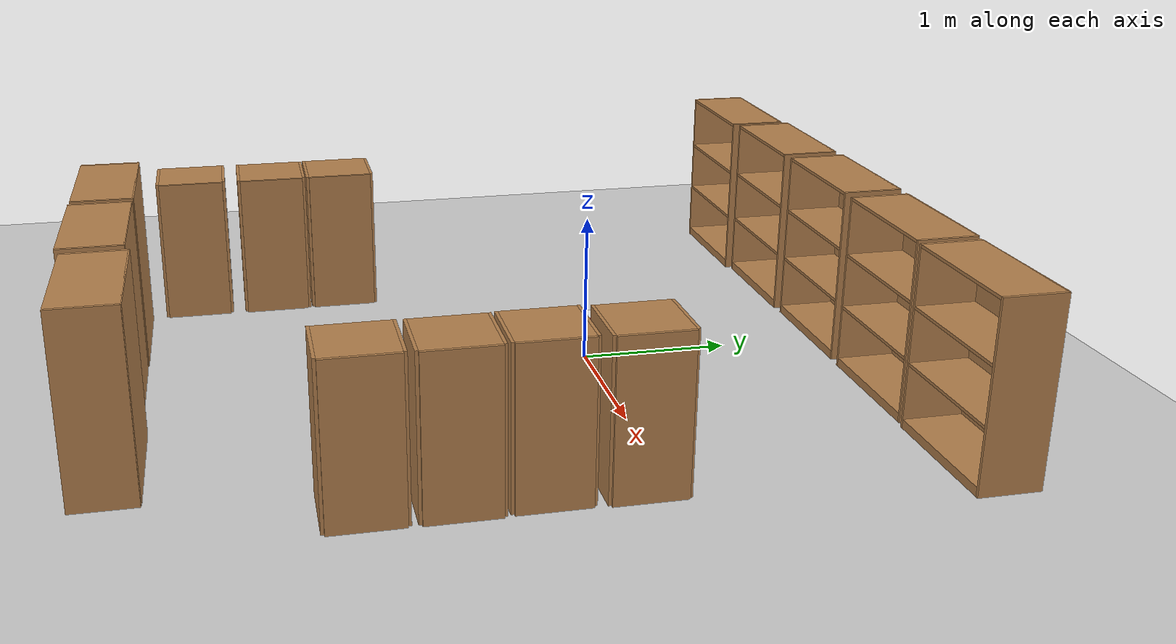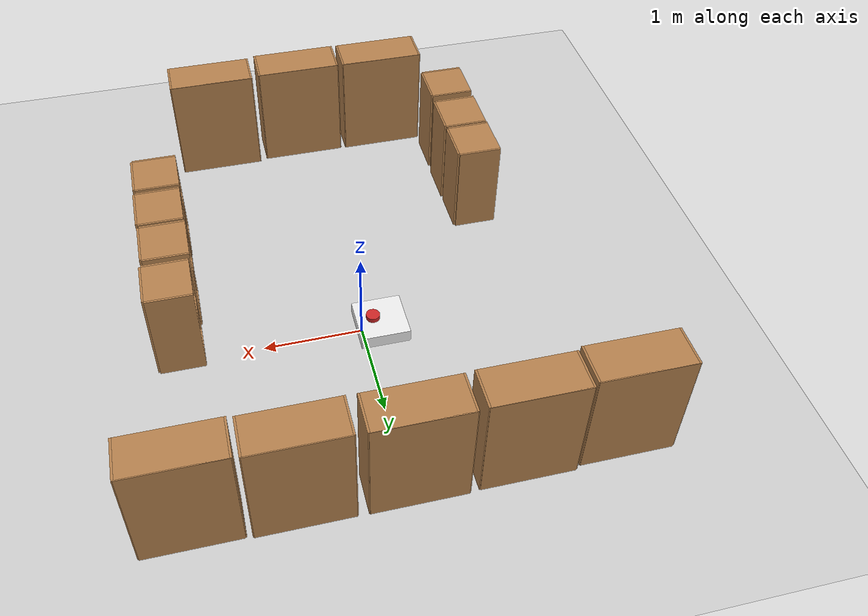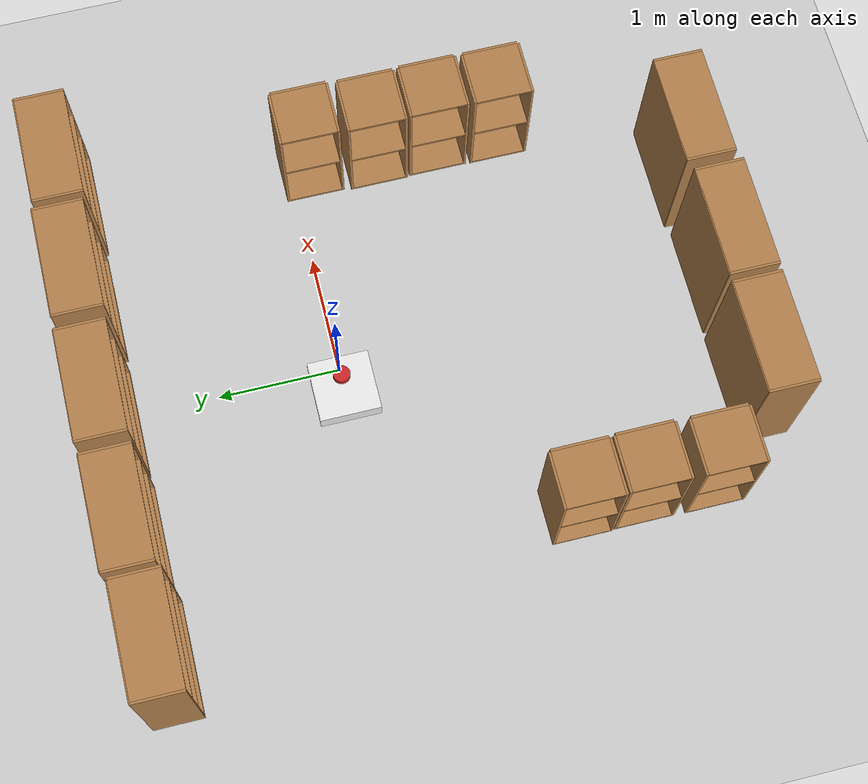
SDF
<sdf version="1.7">
 <world name="default">
  <light name="sun" type="directional">
   <pose>0 0 10 0 -0 0</pose>
   <diffuse>0.8 0.8 0.8 1</diffuse>
   <specular>0.2 0.2 0.2 1</specular>
   <attenuation>
    <range>1000</range>
    <constant>0.9</constant>
    <linear>0.01</linear>
    <quadratic>0.001</quadratic>
   </attenuation>
   <direction>-0.5 0.1 -0.9</direction>
   <spot><inner_angle>0</inner_angle><outer_angle>0</outer_angle><falloff>0</falloff></spot>
  </light>
  <model name="ground_plane">
   <static>1</static>
   <link name="link">
    <collision name="collision">
     <geometry><plane><normal>0 0 1</normal><size>100 100</size></plane></geometry>
     <surface>
      <contact><collide_bitmask>65535</collide_bitmask></contact>
      <friction><ode><mu>100</mu><mu2>50</mu2></ode></friction>
     </surface>
    </collision>
    <visual name="visual">
     <cast_shadows>0</cast_shadows>
     <geometry><plane><normal>0 0 1</normal><size>100 100</size></plane></geometry>
     <material>
      <script><uri>file://media/materials/scripts/gazebo.material</uri><name>Gazebo/Grey</name></script>
     </material>
    </visual>
   </link>
  </model>
  <gravity>0 0 -9.8</gravity>
  <magnetic_field>6e-06 2.3e-05 -4.2e-05</magnetic_field>
  <atmosphere type="adiabatic"/>
  <physics type="ode">
   <max_step_size>0.001</max_step_size>
   <real_time_factor>1</real_time_factor>
   <real_time_update_rate>1000</real_time_update_rate>
  </physics>
  <scene><ambient>0.4 0.4 0.4 1</ambient><background>0.7 0.7 0.7 1</background><shadows>1</shadows></scene>
  <audio><device>default</device></audio>
  <spherical_coordinates>
   <surface_model>EARTH_WGS84</surface_model>
   <latitude_deg>0</latitude_deg>
   <longitude_deg>0</longitude_deg>
   <elevation>0</elevation>
   <heading_deg>0</heading_deg>
  </spherical_coordinates>
  <model name="cabinet">
   <static>1</static>
   <link name="cabinet_bottom_plate">
    <inertial>
     <pose>0 0 -1 0 -0 0</pose>
     <inertia><ixx>2.05</ixx><ixy>0</ixy><ixz>0</ixz><iyy>2.05</iyy><iyz>0</iyz><izz>2.05</izz></inertia>
     <mass>25</mass>
    </inertial>
    <collision name="cabinet_bottom_plate_geom">
     <pose>0 0 0.01 0 -0 0</pose>
     <geometry><box><size>0.45 0.45 0.02</size></box></geometry>
    </collision>
    <visual name="cabinet_bottom_plate_geom_visual">
     <pose>0 0 0.01 0 -0 0</pose>
     <geometry><box><size>0.45 0.45 0.02</size></box></geometry>
     <material>
      <script><uri>file://media/materials/scripts/gazebo.material</uri><name>Gazebo/Wood</name></script>
     </material>
    </visual>
    <collision name="cabinet_bottom_plate_geom_cabinet_back_plate">
     <pose>0.235 0 0.51 0 -0 0</pose>
     <geometry><box><size>0.02 0.45 1.02</size></box></geometry>
    </collision>
    <visual name="cabinet_bottom_plate_geom_cabinet_back_plate_visual">
     <pose>0.235 0 0.51 0 -0 0</pose>
     <geometry><box><size>0.02 0.45 1.02</size></box></geometry>
     <material>
      <script><uri>file://media/materials/scripts/gazebo.material</uri><name>Gazebo/Wood</name></script>
     </material>
    </visual>
    <collision name="cabinet_bottom_plate_geom_cabinet_left_plate">
     <pose>0 0.235 0.51 0 -0 0</pose>
     <geometry><box><size>0.45 0.02 1.02</size></box></geometry>
    </collision>
    <visual name="cabinet_bottom_plate_geom_cabinet_left_plate_visual">
     <pose>0 0.235 0.51 0 -0 0</pose>
     <geometry><box><size>0.45 0.02 1.02</size></box></geometry>
     <material>
      <script><uri>file://media/materials/scripts/gazebo.material</uri><name>Gazebo/Wood</name></script>
     </material>
    </visual>
    <collision name="cabinet_bottom_plate_geom_cabinet_middle_plate">
     <pose>0 0 0.51 0 -0 0</pose>
     <geometry><box><size>0.45 0.45 0.02</size></box></geometry>
    </collision>
    <visual name="cabinet_bottom_plate_geom_cabinet_middle_plate_visual">
     <pose>0 0 0.51 0 -0 0</pose>
     <geometry><box><size>0.45 0.45 0.02</size></box></geometry>
     <material>
      <script><uri>file://media/materials/scripts/gazebo.material</uri><name>Gazebo/Wood</name></script>
     </material>
    </visual>
    <collision name="cabinet_bottom_plate_geom_cabinet_right_plate">
     <pose>0 -0.235 0.51 0 -0 0</pose>
     <geometry><box><size>0.45 0.02 1.02</size></box></geometry>
    </collision>
    <visual name="cabinet_bottom_plate_geom_cabinet_right_plate_visual">
     <pose>0 -0.235 0.51 0 -0 0</pose>
     <geometry><box><size>0.45 0.02 1.02</size></box></geometry>
     <material>
      <script><uri>file://media/materials/scripts/gazebo.material</uri><name>Gazebo/Wood</name></script>
     </material>
    </visual>
    <collision name="cabinet_bottom_plate_geom_cabinet_top_plate">
     <pose>0 0 1.01 0 -0 0</pose>
     <geometry><box><size>0.45 0.45 0.02</size></box></geometry>
    </collision>
    <visual name="cabinet_bottom_plate_geom_cabinet_top_plate_visual">
     <pose>0 0 1.01 0 -0 0</pose>
     <geometry><box><size>0.45 0.45 0.02</size></box></geometry>
     <material>
      <script><uri>file://media/materials/scripts/gazebo.material</uri><name>Gazebo/Wood</name></script>
     </material>
    </visual>
   </link>
   <pose>1.79653 -1.74057 0 0 -0 0</pose>
  </model>
  <model name="cabinet_0">
   <static>1</static>
   <link name="cabinet_bottom_plate">
    <inertial>
     <pose>0 0 -1 0 -0 0</pose>
     <inertia><ixx>2.05</ixx><ixy>0</ixy><ixz>0</ixz><iyy>2.05</iyy><iyz>0</iyz><izz>2.05</izz></inertia>
     <mass>25</mass>
    </inertial>
    <collision name="cabinet_bottom_plate_geom">
     <pose>0 0 0.01 0 -0 0</pose>
     <geometry><box><size>0.45 0.45 0.02</size></box></geometry>
    </collision>
    <visual name="cabinet_bottom_plate_geom_visual">
     <pose>0 0 0.01 0 -0 0</pose>
     <geometry><box><size>0.45 0.45 0.02</size></box></geometry>
     <material>
      <script><uri>file://media/materials/scripts/gazebo.material</uri><name>Gazebo/Wood</name></script>
     </material>
    </visual>
    <collision name="cabinet_bottom_plate_geom_cabinet_back_plate">
     <pose>0.235 0 0.51 0 -0 0</pose>
     <geometry><box><size>0.02 0.45 1.02</size></box></geometry>
    </collision>
    <visual name="cabinet_bottom_plate_geom_cabinet_back_plate_visual">
     <pose>0.235 0 0.51 0 -0 0</pose>
     <geometry><box><size>0.02 0.45 1.02</size></box></geometry>
     <material>
      <script><uri>file://media/materials/scripts/gazebo.material</uri><name>Gazebo/Wood</name></script>
     </material>
    </visual>
    <collision name="cabinet_bottom_plate_geom_cabinet_left_plate">
     <pose>0 0.235 0.51 0 -0 0</pose>
     <geometry><box><size>0.45 0.02 1.02</size></box></geometry>
    </collision>
    <visual name="cabinet_bottom_plate_geom_cabinet_left_plate_visual">
     <pose>0 0.235 0.51 0 -0 0</pose>
     <geometry><box><size>0.45 0.02 1.02</size></box></geometry>
     <material>
      <script><uri>file://media/materials/scripts/gazebo.material</uri><name>Gazebo/Wood</name></script>
     </material>
    </visual>
    <collision name="cabinet_bottom_plate_geom_cabinet_middle_plate">
     <pose>0 0 0.51 0 -0 0</pose>
     <geometry><box><size>0.45 0.45 0.02</size></box></geometry>
    </collision>
    <visual name="cabinet_bottom_plate_geom_cabinet_middle_plate_visual">
     <pose>0 0 0.51 0 -0 0</pose>
     <geometry><box><size>0.45 0.45 0.02</size></box></geometry>
     <material>
      <script><uri>file://media/materials/scripts/gazebo.material</uri><name>Gazebo/Wood</name></script>
     </material>
    </visual>
    <collision name="cabinet_bottom_plate_geom_cabinet_right_plate">
     <pose>0 -0.235 0.51 0 -0 0</pose>
     <geometry><box><size>0.45 0.02 1.02</size></box></geometry>
    </collision>
    <visual name="cabinet_bottom_plate_geom_cabinet_right_plate_visual">
     <pose>0 -0.235 0.51 0 -0 0</pose>
     <geometry><box><size>0.45 0.02 1.02</size></box></geometry>
     <material>
      <script><uri>file://media/materials/scripts/gazebo.material</uri><name>Gazebo/Wood</name></script>
     </material>
    </visual>
    <collision name="cabinet_bottom_plate_geom_cabinet_top_plate">
     <pose>0 0 1.01 0 -0 0</pose>
     <geometry><box><size>0.45 0.45 0.02</size></box></geometry>
    </collision>
    <visual name="cabinet_bottom_plate_geom_cabinet_top_plate_visual">
     <pose>0 0 1.01 0 -0 0</pose>
     <geometry><box><size>0.45 0.45 0.02</size></box></geometry>
     <material>
      <script><uri>file://media/materials/scripts/gazebo.material</uri><name>Gazebo/Wood</name></script>
     </material>
    </visual>
   </link>
   <pose>-1.58608 -1.53469 0 0 -0 0</pose>
  </model>
  <model name="bookshelf">
   <static>1</static>
   <link name="link">
    <inertial><mass>1</mass></inertial>
    <collision name="back">
     <pose>0 0.005 0.6 0 -0 0</pose>
     <geometry><box><size>0.9 0.01 1.2</size></box></geometry>
    </collision>
    <visual name="visual1">
     <pose>0 0.005 0.6 0 -0 0</pose>
     <geometry><box><size>0.9 0.01 1.2</size></box></geometry>
     <material>
      <script><uri>file://media/materials/scripts/gazebo.material</uri><name>Gazebo/Wood</name></script>
     </material>
    </visual>
    <collision name="left_side">
     <pose>0.45 -0.195 0.6 0 -0 0</pose>
     <geometry><box><size>0.02 0.4 1.2</size></box></geometry>
    </collision>
    <visual name="visual2">
     <pose>0.45 -0.195 0.6 0 -0 0</pose>
     <geometry><box><size>0.02 0.4 1.2</size></box></geometry>
     <material>
      <script><uri>file://media/materials/scripts/gazebo.material</uri><name>Gazebo/Wood</name></script>
     </material>
    </visual>
    <collision name="right_side">
     <pose>-0.45 -0.195 0.6 0 -0 0</pose>
     <geometry><box><size>0.02 0.4 1.2</size></box></geometry>
    </collision>
    <visual name="visual3">
     <pose>-0.45 -0.195 0.6 0 -0 0</pose>
     <geometry><box><size>0.02 0.4 1.2</size></box></geometry>
     <material>
      <script><uri>file://media/materials/scripts/gazebo.material</uri><name>Gazebo/Wood</name></script>
     </material>
    </visual>
    <collision name="bottom">
     <pose>0 -0.195 0.03 0 -0 0</pose>
     <geometry><box><size>0.88 0.4 0.06</size></box></geometry>
    </collision>
    <visual name="visual4">
     <pose>0 -0.195 0.03 0 -0 0</pose>
     <geometry><box><size>0.88 0.4 0.06</size></box></geometry>
     <material>
      <script><uri>file://media/materials/scripts/gazebo.material</uri><name>Gazebo/Wood</name></script>
     </material>
    </visual>
    <collision name="top">
     <pose>0 -0.195 1.19 0 -0 0</pose>
     <geometry><box><size>0.88 0.4 0.02</size></box></geometry>
    </collision>
    <visual name="visual5">
     <pose>0 -0.195 1.19 0 -0 0</pose>
     <geometry><box><size>0.88 0.4 0.02</size></box></geometry>
     <material>
      <script><uri>file://media/materials/scripts/gazebo.material</uri><name>Gazebo/Wood</name></script>
     </material>
    </visual>
    <collision name="low_shelf">
     <pose>0 -0.195 0.43 0 -0 0</pose>
     <geometry><box><size>0.88 0.4 0.02</size></box></geometry>
    </collision>
    <visual name="visual6">
     <pose>0 -0.195 0.43 0 -0 0</pose>
     <geometry><box><size>0.88 0.4 0.02</size></box></geometry>
     <material>
      <script><uri>file://media/materials/scripts/gazebo.material</uri><name>Gazebo/Wood</name></script>
     </material>
    </visual>
    <collision name="high_shelf">
     <pose>0 -0.195 0.8 0 -0 0</pose>
     <geometry><box><size>0.88 0.4 0.02</size></box></geometry>
    </collision>
    <visual name="visual7">
     <pose>0 -0.195 0.8 0 -0 0</pose>
     <geometry><box><size>0.88 0.4 0.02</size></box></geometry>
     <material>
      <script><uri>file://media/materials/scripts/gazebo.material</uri><name>Gazebo/Wood</name></script>
     </material>
    </visual>
   </link>
   <pose>-0.070143 2.05105 0 0 -0 0</pose>
  </model>
  <model name="bookshelf_0">
   <static>1</static>
   <link name="link">
    <inertial><mass>1</mass></inertial>
    <collision name="back">
     <pose>0 0.005 0.6 0 -0 0</pose>
     <geometry><box><size>0.9 0.01 1.2</size></box></geometry>
    </collision>
    <visual name="visual1">
     <pose>0 0.005 0.6 0 -0 0</pose>
     <geometry><box><size>0.9 0.01 1.2</size></box></geometry>
     <material>
      <script><uri>file://media/materials/scripts/gazebo.material</uri><name>Gazebo/Wood</name></script>
     </material>
    </visual>
    <collision name="left_side">
     <pose>0.45 -0.195 0.6 0 -0 0</pose>
     <geometry><box><size>0.02 0.4 1.2</size></box></geometry>
    </collision>
    <visual name="visual2">
     <pose>0.45 -0.195 0.6 0 -0 0</pose>
     <geometry><box><size>0.02 0.4 1.2</size></box></geometry>
     <material>
      <script><uri>file://media/materials/scripts/gazebo.material</uri><name>Gazebo/Wood</name></script>
     </material>
    </visual>
    <collision name="right_side">
     <pose>-0.45 -0.195 0.6 0 -0 0</pose>
     <geometry><box><size>0.02 0.4 1.2</size></box></geometry>
    </collision>
    <visual name="visual3">
     <pose>-0.45 -0.195 0.6 0 -0 0</pose>
     <geometry><box><size>0.02 0.4 1.2</size></box></geometry>
     <material>
      <script><uri>file://media/materials/scripts/gazebo.material</uri><name>Gazebo/Wood</name></script>
     </material>
    </visual>
    <collision name="bottom">
     <pose>0 -0.195 0.03 0 -0 0</pose>
     <geometry><box><size>0.88 0.4 0.06</size></box></geometry>
    </collision>
    <visual name="visual4">
     <pose>0 -0.195 0.03 0 -0 0</pose>
     <geometry><box><size>0.88 0.4 0.06</size></box></geometry>
     <material>
      <script><uri>file://media/materials/scripts/gazebo.material</uri><name>Gazebo/Wood</name></script>
     </material>
    </visual>
    <collision name="top">
     <pose>0 -0.195 1.19 0 -0 0</pose>
     <geometry><box><size>0.88 0.4 0.02</size></box></geometry>
    </collision>
    <visual name="visual5">
     <pose>0 -0.195 1.19 0 -0 0</pose>
     <geometry><box><size>0.88 0.4 0.02</size></box></geometry>
     <material>
      <script><uri>file://media/materials/scripts/gazebo.material</uri><name>Gazebo/Wood</name></script>
     </material>
    </visual>
    <collision name="low_shelf">
     <pose>0 -0.195 0.43 0 -0 0</pose>
     <geometry><box><size>0.88 0.4 0.02</size></box></geometry>
    </collision>
    <visual name="visual6">
     <pose>0 -0.195 0.43 0 -0 0</pose>
     <geometry><box><size>0.88 0.4 0.02</size></box></geometry>
     <material>
      <script><uri>file://media/materials/scripts/gazebo.material</uri><name>Gazebo/Wood</name></script>
     </material>
    </visual>
    <collision name="high_shelf">
     <pose>0 -0.195 0.8 0 -0 0</pose>
     <geometry><box><size>0.88 0.4 0.02</size></box></geometry>
    </collision>
    <visual name="visual7">
     <pose>0 -0.195 0.8 0 -0 0</pose>
     <geometry><box><size>0.88 0.4 0.02</size></box></geometry>
     <material>
      <script><uri>file://media/materials/scripts/gazebo.material</uri><name>Gazebo/Wood</name></script>
     </material>
    </visual>
   </link>
   <pose>0.942437 2.04598 0 0 -0 0</pose>
  </model>
  <model name="bookshelf_1">
   <static>1</static>
   <link name="link">
    <inertial><mass>1</mass></inertial>
    <collision name="back">
     <pose>0 0.005 0.6 0 -0 0</pose>
     <geometry><box><size>0.9 0.01 1.2</size></box></geometry>
    </collision>
    <visual name="visual1">
     <pose>0 0.005 0.6 0 -0 0</pose>
     <geometry><box><size>0.9 0.01 1.2</size></box></geometry>
     <material>
      <script><uri>file://media/materials/scripts/gazebo.material</uri><name>Gazebo/Wood</name></script>
     </material>
    </visual>
    <collision name="left_side">
     <pose>0.45 -0.195 0.6 0 -0 0</pose>
     <geometry><box><size>0.02 0.4 1.2</size></box></geometry>
    </collision>
    <visual name="visual2">
     <pose>0.45 -0.195 0.6 0 -0 0</pose>
     <geometry><box><size>0.02 0.4 1.2</size></box></geometry>
     <material>
      <script><uri>file://media/materials/scripts/gazebo.material</uri><name>Gazebo/Wood</name></script>
     </material>
    </visual>
    <collision name="right_side">
     <pose>-0.45 -0.195 0.6 0 -0 0</pose>
     <geometry><box><size>0.02 0.4 1.2</size></box></geometry>
    </collision>
    <visual name="visual3">
     <pose>-0.45 -0.195 0.6 0 -0 0</pose>
     <geometry><box><size>0.02 0.4 1.2</size></box></geometry>
     <material>
      <script><uri>file://media/materials/scripts/gazebo.material</uri><name>Gazebo/Wood</name></script>
     </material>
    </visual>
    <collision name="bottom">
     <pose>0 -0.195 0.03 0 -0 0</pose>
     <geometry><box><size>0.88 0.4 0.06</size></box></geometry>
    </collision>
    <visual name="visual4">
     <pose>0 -0.195 0.03 0 -0 0</pose>
     <geometry><box><size>0.88 0.4 0.06</size></box></geometry>
     <material>
      <script><uri>file://media/materials/scripts/gazebo.material</uri><name>Gazebo/Wood</name></script>
     </material>
    </visual>
    <collision name="top">
     <pose>0 -0.195 1.19 0 -0 0</pose>
     <geometry><box><size>0.88 0.4 0.02</size></box></geometry>
    </collision>
    <visual name="visual5">
     <pose>0 -0.195 1.19 0 -0 0</pose>
     <geometry><box><size>0.88 0.4 0.02</size></box></geometry>
     <material>
      <script><uri>file://media/materials/scripts/gazebo.material</uri><name>Gazebo/Wood</name></script>
     </material>
    </visual>
    <collision name="low_shelf">
     <pose>0 -0.195 0.43 0 -0 0</pose>
     <geometry><box><size>0.88 0.4 0.02</size></box></geometry>
    </collision>
    <visual name="visual6">
     <pose>0 -0.195 0.43 0 -0 0</pose>
     <geometry><box><size>0.88 0.4 0.02</size></box></geometry>
     <material>
      <script><uri>file://media/materials/scripts/gazebo.material</uri><name>Gazebo/Wood</name></script>
     </material>
    </visual>
    <collision name="high_shelf">
     <pose>0 -0.195 0.8 0 -0 0</pose>
     <geometry><box><size>0.88 0.4 0.02</size></box></geometry>
    </collision>
    <visual name="visual7">
     <pose>0 -0.195 0.8 0 -0 0</pose>
     <geometry><box><size>0.88 0.4 0.02</size></box></geometry>
     <material>
      <script><uri>file://media/materials/scripts/gazebo.material</uri><name>Gazebo/Wood</name></script>
     </material>
    </visual>
   </link>
   <pose>-1.06941 2.03933 0 0 -0 0</pose>
  </model>
  <model name="bookshelf_2">
   <static>1</static>
   <link name="link">
    <inertial><mass>1</mass></inertial>
    <collision name="back">
     <pose>0 0.005 0.6 0 -0 0</pose>
     <geometry><box><size>0.9 0.01 1.2</size></box></geometry>
    </collision>
    <visual name="visual1">
     <pose>0 0.005 0.6 0 -0 0</pose>
     <geometry><box><size>0.9 0.01 1.2</size></box></geometry>
     <material>
      <script><uri>file://media/materials/scripts/gazebo.material</uri><name>Gazebo/Wood</name></script>
     </material>
    </visual>
    <collision name="left_side">
     <pose>0.45 -0.195 0.6 0 -0 0</pose>
     <geometry><box><size>0.02 0.4 1.2</size></box></geometry>
    </collision>
    <visual name="visual2">
     <pose>0.45 -0.195 0.6 0 -0 0</pose>
     <geometry><box><size>0.02 0.4 1.2</size></box></geometry>
     <material>
      <script><uri>file://media/materials/scripts/gazebo.material</uri><name>Gazebo/Wood</name></script>
     </material>
    </visual>
    <collision name="right_side">
     <pose>-0.45 -0.195 0.6 0 -0 0</pose>
     <geometry><box><size>0.02 0.4 1.2</size></box></geometry>
    </collision>
    <visual name="visual3">
     <pose>-0.45 -0.195 0.6 0 -0 0</pose>
     <geometry><box><size>0.02 0.4 1.2</size></box></geometry>
     <material>
      <script><uri>file://media/materials/scripts/gazebo.material</uri><name>Gazebo/Wood</name></script>
     </material>
    </visual>
    <collision name="bottom">
     <pose>0 -0.195 0.03 0 -0 0</pose>
     <geometry><box><size>0.88 0.4 0.06</size></box></geometry>
    </collision>
    <visual name="visual4">
     <pose>0 -0.195 0.03 0 -0 0</pose>
     <geometry><box><size>0.88 0.4 0.06</size></box></geometry>
     <material>
      <script><uri>file://media/materials/scripts/gazebo.material</uri><name>Gazebo/Wood</name></script>
     </material>
    </visual>
    <collision name="top">
     <pose>0 -0.195 1.19 0 -0 0</pose>
     <geometry><box><size>0.88 0.4 0.02</size></box></geometry>
    </collision>
    <visual name="visual5">
     <pose>0 -0.195 1.19 0 -0 0</pose>
     <geometry><box><size>0.88 0.4 0.02</size></box></geometry>
     <material>
      <script><uri>file://media/materials/scripts/gazebo.material</uri><name>Gazebo/Wood</name></script>
     </material>
    </visual>
    <collision name="low_shelf">
     <pose>0 -0.195 0.43 0 -0 0</pose>
     <geometry><box><size>0.88 0.4 0.02</size></box></geometry>
    </collision>
    <visual name="visual6">
     <pose>0 -0.195 0.43 0 -0 0</pose>
     <geometry><box><size>0.88 0.4 0.02</size></box></geometry>
     <material>
      <script><uri>file://media/materials/scripts/gazebo.material</uri><name>Gazebo/Wood</name></script>
     </material>
    </visual>
    <collision name="high_shelf">
     <pose>0 -0.195 0.8 0 -0 0</pose>
     <geometry><box><size>0.88 0.4 0.02</size></box></geometry>
    </collision>
    <visual name="visual7">
     <pose>0 -0.195 0.8 0 -0 0</pose>
     <geometry><box><size>0.88 0.4 0.02</size></box></geometry>
     <material>
      <script><uri>file://media/materials/scripts/gazebo.material</uri><name>Gazebo/Wood</name></script>
     </material>
    </visual>
   </link>
   <pose>-2.02264 2.00355 0 0 -0 0</pose>
  </model>
  <model name="cabinet_1">
   <static>1</static>
   <link name="cabinet_bottom_plate">
    <inertial>
     <pose>0 0 -1 0 -0 0</pose>
     <inertia><ixx>2.05</ixx><ixy>0</ixy><ixz>0</ixz><iyy>2.05</iyy><iyz>0</iyz><izz>2.05</izz></inertia>
     <mass>25</mass>
    </inertial>
    <collision name="cabinet_bottom_plate_geom">
     <pose>0 0 0.01 0 -0 0</pose>
     <geometry><box><size>0.45 0.45 0.02</size></box></geometry>
    </collision>
    <visual name="cabinet_bottom_plate_geom_visual">
     <pose>0 0 0.01 0 -0 0</pose>
     <geometry><box><size>0.45 0.45 0.02</size></box></geometry>
     <material>
      <script><uri>file://media/materials/scripts/gazebo.material</uri><name>Gazebo/Wood</name></script>
     </material>
    </visual>
    <collision name="cabinet_bottom_plate_geom_cabinet_back_plate">
     <pose>0.235 0 0.51 0 -0 0</pose>
     <geometry><box><size>0.02 0.45 1.02</size></box></geometry>
    </collision>
    <visual name="cabinet_bottom_plate_geom_cabinet_back_plate_visual">
     <pose>0.235 0 0.51 0 -0 0</pose>
     <geometry><box><size>0.02 0.45 1.02</size></box></geometry>
     <material>
      <script><uri>file://media/materials/scripts/gazebo.material</uri><name>Gazebo/Wood</name></script>
     </material>
    </visual>
    <collision name="cabinet_bottom_plate_geom_cabinet_left_plate">
     <pose>0 0.235 0.51 0 -0 0</pose>
     <geometry><box><size>0.45 0.02 1.02</size></box></geometry>
    </collision>
    <visual name="cabinet_bottom_plate_geom_cabinet_left_plate_visual">
     <pose>0 0.235 0.51 0 -0 0</pose>
     <geometry><box><size>0.45 0.02 1.02</size></box></geometry>
     <material>
      <script><uri>file://media/materials/scripts/gazebo.material</uri><name>Gazebo/Wood</name></script>
     </material>
    </visual>
    <collision name="cabinet_bottom_plate_geom_cabinet_middle_plate">
     <pose>0 0 0.51 0 -0 0</pose>
     <geometry><box><size>0.45 0.45 0.02</size></box></geometry>
    </collision>
    <visual name="cabinet_bottom_plate_geom_cabinet_middle_plate_visual">
     <pose>0 0 0.51 0 -0 0</pose>
     <geometry><box><size>0.45 0.45 0.02</size></box></geometry>
     <material>
      <script><uri>file://media/materials/scripts/gazebo.material</uri><name>Gazebo/Wood</name></script>
     </material>
    </visual>
    <collision name="cabinet_bottom_plate_geom_cabinet_right_plate">
     <pose>0 -0.235 0.51 0 -0 0</pose>
     <geometry><box><size>0.45 0.02 1.02</size></box></geometry>
    </collision>
    <visual name="cabinet_bottom_plate_geom_cabinet_right_plate_visual">
     <pose>0 -0.235 0.51 0 -0 0</pose>
     <geometry><box><size>0.45 0.02 1.02</size></box></geometry>
     <material>
      <script><uri>file://media/materials/scripts/gazebo.material</uri><name>Gazebo/Wood</name></script>
     </material>
    </visual>
    <collision name="cabinet_bottom_plate_geom_cabinet_top_plate">
     <pose>0 0 1.01 0 -0 0</pose>
     <geometry><box><size>0.45 0.45 0.02</size></box></geometry>
    </collision>
    <visual name="cabinet_bottom_plate_geom_cabinet_top_plate_visual">
     <pose>0 0 1.01 0 -0 0</pose>
     <geometry><box><size>0.45 0.45 0.02</size></box></geometry>
     <material>
      <script><uri>file://media/materials/scripts/gazebo.material</uri><name>Gazebo/Wood</name></script>
     </material>
    </visual>
   </link>
   <pose>1.80158 -1.21497 0 0 -0 0</pose>
  </model>
  <model name="cabinet_2">
   <static>1</static>
   <link name="cabinet_bottom_plate">
    <inertial>
     <pose>0 0 -1 0 -0 0</pose>
     <inertia><ixx>2.05</ixx><ixy>0</ixy><ixz>0</ixz><iyy>2.05</iyy><iyz>0</iyz><izz>2.05</izz></inertia>
     <mass>25</mass>
    </inertial>
    <collision name="cabinet_bottom_plate_geom">
     <pose>0 0 0.01 0 -0 0</pose>
     <geometry><box><size>0.45 0.45 0.02</size></box></geometry>
    </collision>
    <visual name="cabinet_bottom_plate_geom_visual">
     <pose>0 0 0.01 0 -0 0</pose>
     <geometry><box><size>0.45 0.45 0.02</size></box></geometry>
     <material>
      <script><uri>file://media/materials/scripts/gazebo.material</uri><name>Gazebo/Wood</name></script>
     </material>
    </visual>
    <collision name="cabinet_bottom_plate_geom_cabinet_back_plate">
     <pose>0.235 0 0.51 0 -0 0</pose>
     <geometry><box><size>0.02 0.45 1.02</size></box></geometry>
    </collision>
    <visual name="cabinet_bottom_plate_geom_cabinet_back_plate_visual">
     <pose>0.235 0 0.51 0 -0 0</pose>
     <geometry><box><size>0.02 0.45 1.02</size></box></geometry>
     <material>
      <script><uri>file://media/materials/scripts/gazebo.material</uri><name>Gazebo/Wood</name></script>
     </material>
    </visual>
    <collision name="cabinet_bottom_plate_geom_cabinet_left_plate">
     <pose>0 0.235 0.51 0 -0 0</pose>
     <geometry><box><size>0.45 0.02 1.02</size></box></geometry>
    </collision>
    <visual name="cabinet_bottom_plate_geom_cabinet_left_plate_visual">
     <pose>0 0.235 0.51 0 -0 0</pose>
     <geometry><box><size>0.45 0.02 1.02</size></box></geometry>
     <material>
      <script><uri>file://media/materials/scripts/gazebo.material</uri><name>Gazebo/Wood</name></script>
     </material>
    </visual>
    <collision name="cabinet_bottom_plate_geom_cabinet_middle_plate">
     <pose>0 0 0.51 0 -0 0</pose>
     <geometry><box><size>0.45 0.45 0.02</size></box></geometry>
    </collision>
    <visual name="cabinet_bottom_plate_geom_cabinet_middle_plate_visual">
     <pose>0 0 0.51 0 -0 0</pose>
     <geometry><box><size>0.45 0.45 0.02</size></box></geometry>
     <material>
      <script><uri>file://media/materials/scripts/gazebo.material</uri><name>Gazebo/Wood</name></script>
     </material>
    </visual>
    <collision name="cabinet_bottom_plate_geom_cabinet_right_plate">
     <pose>0 -0.235 0.51 0 -0 0</pose>
     <geometry><box><size>0.45 0.02 1.02</size></box></geometry>
    </collision>
    <visual name="cabinet_bottom_plate_geom_cabinet_right_plate_visual">
     <pose>0 -0.235 0.51 0 -0 0</pose>
     <geometry><box><size>0.45 0.02 1.02</size></box></geometry>
     <material>
      <script><uri>file://media/materials/scripts/gazebo.material</uri><name>Gazebo/Wood</name></script>
     </material>
    </visual>
    <collision name="cabinet_bottom_plate_geom_cabinet_top_plate">
     <pose>0 0 1.01 0 -0 0</pose>
     <geometry><box><size>0.45 0.45 0.02</size></box></geometry>
    </collision>
    <visual name="cabinet_bottom_plate_geom_cabinet_top_plate_visual">
     <pose>0 0 1.01 0 -0 0</pose>
     <geometry><box><size>0.45 0.45 0.02</size></box></geometry>
     <material>
      <script><uri>file://media/materials/scripts/gazebo.material</uri><name>Gazebo/Wood</name></script>
     </material>
    </visual>
   </link>
   <pose>1.79263 -0.707064 0 0 -0 0</pose>
  </model>
  <model name="cabinet_3">
   <static>1</static>
   <link name="cabinet_bottom_plate">
    <inertial>
     <pose>0 0 -1 0 -0 0</pose>
     <inertia><ixx>2.05</ixx><ixy>0</ixy><ixz>0</ixz><iyy>2.05</iyy><iyz>0</iyz><izz>2.05</izz></inertia>
     <mass>25</mass>
    </inertial>
    <collision name="cabinet_bottom_plate_geom">
     <pose>0 0 0.01 0 -0 0</pose>
     <geometry><box><size>0.45 0.45 0.02</size></box></geometry>
    </collision>
    <visual name="cabinet_bottom_plate_geom_visual">
     <pose>0 0 0.01 0 -0 0</pose>
     <geometry><box><size>0.45 0.45 0.02</size></box></geometry>
     <material>
      <script><uri>file://media/materials/scripts/gazebo.material</uri><name>Gazebo/Wood</name></script>
     </material>
    </visual>
    <collision name="cabinet_bottom_plate_geom_cabinet_back_plate">
     <pose>0.235 0 0.51 0 -0 0</pose>
     <geometry><box><size>0.02 0.45 1.02</size></box></geometry>
    </collision>
    <visual name="cabinet_bottom_plate_geom_cabinet_back_plate_visual">
     <pose>0.235 0 0.51 0 -0 0</pose>
     <geometry><box><size>0.02 0.45 1.02</size></box></geometry>
     <material>
      <script><uri>file://media/materials/scripts/gazebo.material</uri><name>Gazebo/Wood</name></script>
     </material>
    </visual>
    <collision name="cabinet_bottom_plate_geom_cabinet_left_plate">
     <pose>0 0.235 0.51 0 -0 0</pose>
     <geometry><box><size>0.45 0.02 1.02</size></box></geometry>
    </collision>
    <visual name="cabinet_bottom_plate_geom_cabinet_left_plate_visual">
     <pose>0 0.235 0.51 0 -0 0</pose>
     <geometry><box><size>0.45 0.02 1.02</size></box></geometry>
     <material>
      <script><uri>file://media/materials/scripts/gazebo.material</uri><name>Gazebo/Wood</name></script>
     </material>
    </visual>
    <collision name="cabinet_bottom_plate_geom_cabinet_middle_plate">
     <pose>0 0 0.51 0 -0 0</pose>
     <geometry><box><size>0.45 0.45 0.02</size></box></geometry>
    </collision>
    <visual name="cabinet_bottom_plate_geom_cabinet_middle_plate_visual">
     <pose>0 0 0.51 0 -0 0</pose>
     <geometry><box><size>0.45 0.45 0.02</size></box></geometry>
     <material>
      <script><uri>file://media/materials/scripts/gazebo.material</uri><name>Gazebo/Wood</name></script>
     </material>
    </visual>
    <collision name="cabinet_bottom_plate_geom_cabinet_right_plate">
     <pose>0 -0.235 0.51 0 -0 0</pose>
     <geometry><box><size>0.45 0.02 1.02</size></box></geometry>
    </collision>
    <visual name="cabinet_bottom_plate_geom_cabinet_right_plate_visual">
     <pose>0 -0.235 0.51 0 -0 0</pose>
     <geometry><box><size>0.45 0.02 1.02</size></box></geometry>
     <material>
      <script><uri>file://media/materials/scripts/gazebo.material</uri><name>Gazebo/Wood</name></script>
     </material>
    </visual>
    <collision name="cabinet_bottom_plate_geom_cabinet_top_plate">
     <pose>0 0 1.01 0 -0 0</pose>
     <geometry><box><size>0.45 0.45 0.02</size></box></geometry>
    </collision>
    <visual name="cabinet_bottom_plate_geom_cabinet_top_plate_visual">
     <pose>0 0 1.01 0 -0 0</pose>
     <geometry><box><size>0.45 0.45 0.02</size></box></geometry>
     <material>
      <script><uri>file://media/materials/scripts/gazebo.material</uri><name>Gazebo/Wood</name></script>
     </material>
    </visual>
   </link>
   <pose>1.80797 -0.160654 0 0 -0 0</pose>
  </model>
  <model name="bookshelf_3">
   <static>1</static>
   <link name="link">
    <inertial><mass>1</mass></inertial>
    <collision name="back">
     <pose>0 0.005 0.6 0 -0 0</pose>
     <geometry><box><size>0.9 0.01 1.2</size></box></geometry>
    </collision>
    <visual name="visual1">
     <pose>0 0.005 0.6 0 -0 0</pose>
     <geometry><box><size>0.9 0.01 1.2</size></box></geometry>
     <material>
      <script><uri>file://media/materials/scripts/gazebo.material</uri><name>Gazebo/Wood</name></script>
     </material>
    </visual>
    <collision name="left_side">
     <pose>0.45 -0.195 0.6 0 -0 0</pose>
     <geometry><box><size>0.02 0.4 1.2</size></box></geometry>
    </collision>
    <visual name="visual2">
     <pose>0.45 -0.195 0.6 0 -0 0</pose>
     <geometry><box><size>0.02 0.4 1.2</size></box></geometry>
     <material>
      <script><uri>file://media/materials/scripts/gazebo.material</uri><name>Gazebo/Wood</name></script>
     </material>
    </visual>
    <collision name="right_side">
     <pose>-0.45 -0.195 0.6 0 -0 0</pose>
     <geometry><box><size>0.02 0.4 1.2</size></box></geometry>
    </collision>
    <visual name="visual3">
     <pose>-0.45 -0.195 0.6 0 -0 0</pose>
     <geometry><box><size>0.02 0.4 1.2</size></box></geometry>
     <material>
      <script><uri>file://media/materials/scripts/gazebo.material</uri><name>Gazebo/Wood</name></script>
     </material>
    </visual>
    <collision name="bottom">
     <pose>0 -0.195 0.03 0 -0 0</pose>
     <geometry><box><size>0.88 0.4 0.06</size></box></geometry>
    </collision>
    <visual name="visual4">
     <pose>0 -0.195 0.03 0 -0 0</pose>
     <geometry><box><size>0.88 0.4 0.06</size></box></geometry>
     <material>
      <script><uri>file://media/materials/scripts/gazebo.material</uri><name>Gazebo/Wood</name></script>
     </material>
    </visual>
    <collision name="top">
     <pose>0 -0.195 1.19 0 -0 0</pose>
     <geometry><box><size>0.88 0.4 0.02</size></box></geometry>
    </collision>
    <visual name="visual5">
     <pose>0 -0.195 1.19 0 -0 0</pose>
     <geometry><box><size>0.88 0.4 0.02</size></box></geometry>
     <material>
      <script><uri>file://media/materials/scripts/gazebo.material</uri><name>Gazebo/Wood</name></script>
     </material>
    </visual>
    <collision name="low_shelf">
     <pose>0 -0.195 0.43 0 -0 0</pose>
     <geometry><box><size>0.88 0.4 0.02</size></box></geometry>
    </collision>
    <visual name="visual6">
     <pose>0 -0.195 0.43 0 -0 0</pose>
     <geometry><box><size>0.88 0.4 0.02</size></box></geometry>
     <material>
      <script><uri>file://media/materials/scripts/gazebo.material</uri><name>Gazebo/Wood</name></script>
     </material>
    </visual>
    <collision name="high_shelf">
     <pose>0 -0.195 0.8 0 -0 0</pose>
     <geometry><box><size>0.88 0.4 0.02</size></box></geometry>
    </collision>
    <visual name="visual7">
     <pose>0 -0.195 0.8 0 -0 0</pose>
     <geometry><box><size>0.88 0.4 0.02</size></box></geometry>
     <material>
      <script><uri>file://media/materials/scripts/gazebo.material</uri><name>Gazebo/Wood</name></script>
     </material>
    </visual>
   </link>
   <pose>1.91126 2.03071 0 0 -0 0</pose>
  </model>
  <model name="cabinet_4">
   <static>1</static>
   <link name="cabinet_bottom_plate">
    <inertial>
     <pose>0 0 -1 0 -0 0</pose>
     <inertia><ixx>2.05</ixx><ixy>0</ixy><ixz>0</ixz><iyy>2.05</iyy><iyz>0</iyz><izz>2.05</izz></inertia>
     <mass>25</mass>
    </inertial>
    <collision name="cabinet_bottom_plate_geom">
     <pose>0 0 0.01 0 -0 0</pose>
     <geometry><box><size>0.45 0.45 0.02</size></box></geometry>
    </collision>
    <visual name="cabinet_bottom_plate_geom_visual">
     <pose>0 0 0.01 0 -0 0</pose>
     <geometry><box><size>0.45 0.45 0.02</size></box></geometry>
     <material>
      <script><uri>file://media/materials/scripts/gazebo.material</uri><name>Gazebo/Wood</name></script>
     </material>
    </visual>
    <collision name="cabinet_bottom_plate_geom_cabinet_back_plate">
     <pose>0.235 0 0.51 0 -0 0</pose>
     <geometry><box><size>0.02 0.45 1.02</size></box></geometry>
    </collision>
    <visual name="cabinet_bottom_plate_geom_cabinet_back_plate_visual">
     <pose>0.235 0 0.51 0 -0 0</pose>
     <geometry><box><size>0.02 0.45 1.02</size></box></geometry>
     <material>
      <script><uri>file://media/materials/scripts/gazebo.material</uri><name>Gazebo/Wood</name></script>
     </material>
    </visual>
    <collision name="cabinet_bottom_plate_geom_cabinet_left_plate">
     <pose>0 0.235 0.51 0 -0 0</pose>
     <geometry><box><size>0.45 0.02 1.02</size></box></geometry>
    </collision>
    <visual name="cabinet_bottom_plate_geom_cabinet_left_plate_visual">
     <pose>0 0.235 0.51 0 -0 0</pose>
     <geometry><box><size>0.45 0.02 1.02</size></box></geometry>
     <material>
      <script><uri>file://media/materials/scripts/gazebo.material</uri><name>Gazebo/Wood</name></script>
     </material>
    </visual>
    <collision name="cabinet_bottom_plate_geom_cabinet_middle_plate">
     <pose>0 0 0.51 0 -0 0</pose>
     <geometry><box><size>0.45 0.45 0.02</size></box></geometry>
    </collision>
    <visual name="cabinet_bottom_plate_geom_cabinet_middle_plate_visual">
     <pose>0 0 0.51 0 -0 0</pose>
     <geometry><box><size>0.45 0.45 0.02</size></box></geometry>
     <material>
      <script><uri>file://media/materials/scripts/gazebo.material</uri><name>Gazebo/Wood</name></script>
     </material>
    </visual>
    <collision name="cabinet_bottom_plate_geom_cabinet_right_plate">
     <pose>0 -0.235 0.51 0 -0 0</pose>
     <geometry><box><size>0.45 0.02 1.02</size></box></geometry>
    </collision>
    <visual name="cabinet_bottom_plate_geom_cabinet_right_plate_visual">
     <pose>0 -0.235 0.51 0 -0 0</pose>
     <geometry><box><size>0.45 0.02 1.02</size></box></geometry>
     <material>
      <script><uri>file://media/materials/scripts/gazebo.material</uri><name>Gazebo/Wood</name></script>
     </material>
    </visual>
    <collision name="cabinet_bottom_plate_geom_cabinet_top_plate">
     <pose>0 0 1.01 0 -0 0</pose>
     <geometry><box><size>0.45 0.45 0.02</size></box></geometry>
    </collision>
    <visual name="cabinet_bottom_plate_geom_cabinet_top_plate_visual">
     <pose>0 0 1.01 0 -0 0</pose>
     <geometry><box><size>0.45 0.45 0.02</size></box></geometry>
     <material>
      <script><uri>file://media/materials/scripts/gazebo.material</uri><name>Gazebo/Wood</name></script>
     </material>
    </visual>
   </link>
   <pose>-1.57963 -2.03463 0 0 -0 0</pose>
  </model>
  <model name="cabinet_5">
   <static>1</static>
   <link name="cabinet_bottom_plate">
    <inertial>
     <pose>0 0 -1 0 -0 0</pose>
     <inertia><ixx>2.05</ixx><ixy>0</ixy><ixz>0</ixz><iyy>2.05</iyy><iyz>0</iyz><izz>2.05</izz></inertia>
     <mass>25</mass>
    </inertial>
    <collision name="cabinet_bottom_plate_geom">
     <pose>0 0 0.01 0 -0 0</pose>
     <geometry><box><size>0.45 0.45 0.02</size></box></geometry>
    </collision>
    <visual name="cabinet_bottom_plate_geom_visual">
     <pose>0 0 0.01 0 -0 0</pose>
     <geometry><box><size>0.45 0.45 0.02</size></box></geometry>
     <material>
      <script><uri>file://media/materials/scripts/gazebo.material</uri><name>Gazebo/Wood</name></script>
     </material>
    </visual>
    <collision name="cabinet_bottom_plate_geom_cabinet_back_plate">
     <pose>0.235 0 0.51 0 -0 0</pose>
     <geometry><box><size>0.02 0.45 1.02</size></box></geometry>
    </collision>
    <visual name="cabinet_bottom_plate_geom_cabinet_back_plate_visual">
     <pose>0.235 0 0.51 0 -0 0</pose>
     <geometry><box><size>0.02 0.45 1.02</size></box></geometry>
     <material>
      <script><uri>file://media/materials/scripts/gazebo.material</uri><name>Gazebo/Wood</name></script>
     </material>
    </visual>
    <collision name="cabinet_bottom_plate_geom_cabinet_left_plate">
     <pose>0 0.235 0.51 0 -0 0</pose>
     <geometry><box><size>0.45 0.02 1.02</size></box></geometry>
    </collision>
    <visual name="cabinet_bottom_plate_geom_cabinet_left_plate_visual">
     <pose>0 0.235 0.51 0 -0 0</pose>
     <geometry><box><size>0.45 0.02 1.02</size></box></geometry>
     <material>
      <script><uri>file://media/materials/scripts/gazebo.material</uri><name>Gazebo/Wood</name></script>
     </material>
    </visual>
    <collision name="cabinet_bottom_plate_geom_cabinet_middle_plate">
     <pose>0 0 0.51 0 -0 0</pose>
     <geometry><box><size>0.45 0.45 0.02</size></box></geometry>
    </collision>
    <visual name="cabinet_bottom_plate_geom_cabinet_middle_plate_visual">
     <pose>0 0 0.51 0 -0 0</pose>
     <geometry><box><size>0.45 0.45 0.02</size></box></geometry>
     <material>
      <script><uri>file://media/materials/scripts/gazebo.material</uri><name>Gazebo/Wood</name></script>
     </material>
    </visual>
    <collision name="cabinet_bottom_plate_geom_cabinet_right_plate">
     <pose>0 -0.235 0.51 0 -0 0</pose>
     <geometry><box><size>0.45 0.02 1.02</size></box></geometry>
    </collision>
    <visual name="cabinet_bottom_plate_geom_cabinet_right_plate_visual">
     <pose>0 -0.235 0.51 0 -0 0</pose>
     <geometry><box><size>0.45 0.02 1.02</size></box></geometry>
     <material>
      <script><uri>file://media/materials/scripts/gazebo.material</uri><name>Gazebo/Wood</name></script>
     </material>
    </visual>
    <collision name="cabinet_bottom_plate_geom_cabinet_top_plate">
     <pose>0 0 1.01 0 -0 0</pose>
     <geometry><box><size>0.45 0.45 0.02</size></box></geometry>
    </collision>
    <visual name="cabinet_bottom_plate_geom_cabinet_top_plate_visual">
     <pose>0 0 1.01 0 -0 0</pose>
     <geometry><box><size>0.45 0.45 0.02</size></box></geometry>
     <material>
      <script><uri>file://media/materials/scripts/gazebo.material</uri><name>Gazebo/Wood</name></script>
     </material>
    </visual>
   </link>
   <pose>-1.58558 -2.61251 0 0 -0 0</pose>
  </model>
  <model name="bookshelf_4">
   <static>1</static>
   <link name="link">
    <inertial><mass>1</mass></inertial>
    <collision name="back">
     <pose>0 0.005 0.6 0 -0 0</pose>
     <geometry><box><size>0.9 0.01 1.2</size></box></geometry>
    </collision>
    <visual name="visual1">
     <pose>0 0.005 0.6 0 -0 0</pose>
     <geometry><box><size>0.9 0.01 1.2</size></box></geometry>
     <material>
      <script><uri>file://media/materials/scripts/gazebo.material</uri><name>Gazebo/Wood</name></script>
     </material>
    </visual>
    <collision name="left_side">
     <pose>0.45 -0.195 0.6 0 -0 0</pose>
     <geometry><box><size>0.02 0.4 1.2</size></box></geometry>
    </collision>
    <visual name="visual2">
     <pose>0.45 -0.195 0.6 0 -0 0</pose>
     <geometry><box><size>0.02 0.4 1.2</size></box></geometry>
     <material>
      <script><uri>file://media/materials/scripts/gazebo.material</uri><name>Gazebo/Wood</name></script>
     </material>
    </visual>
    <collision name="right_side">
     <pose>-0.45 -0.195 0.6 0 -0 0</pose>
     <geometry><box><size>0.02 0.4 1.2</size></box></geometry>
    </collision>
    <visual name="visual3">
     <pose>-0.45 -0.195 0.6 0 -0 0</pose>
     <geometry><box><size>0.02 0.4 1.2</size></box></geometry>
     <material>
      <script><uri>file://media/materials/scripts/gazebo.material</uri><name>Gazebo/Wood</name></script>
     </material>
    </visual>
    <collision name="bottom">
     <pose>0 -0.195 0.03 0 -0 0</pose>
     <geometry><box><size>0.88 0.4 0.06</size></box></geometry>
    </collision>
    <visual name="visual4">
     <pose>0 -0.195 0.03 0 -0 0</pose>
     <geometry><box><size>0.88 0.4 0.06</size></box></geometry>
     <material>
      <script><uri>file://media/materials/scripts/gazebo.material</uri><name>Gazebo/Wood</name></script>
     </material>
    </visual>
    <collision name="top">
     <pose>0 -0.195 1.19 0 -0 0</pose>
     <geometry><box><size>0.88 0.4 0.02</size></box></geometry>
    </collision>
    <visual name="visual5">
     <pose>0 -0.195 1.19 0 -0 0</pose>
     <geometry><box><size>0.88 0.4 0.02</size></box></geometry>
     <material>
      <script><uri>file://media/materials/scripts/gazebo.material</uri><name>Gazebo/Wood</name></script>
     </material>
    </visual>
    <collision name="low_shelf">
     <pose>0 -0.195 0.43 0 -0 0</pose>
     <geometry><box><size>0.88 0.4 0.02</size></box></geometry>
    </collision>
    <visual name="visual6">
     <pose>0 -0.195 0.43 0 -0 0</pose>
     <geometry><box><size>0.88 0.4 0.02</size></box></geometry>
     <material>
      <script><uri>file://media/materials/scripts/gazebo.material</uri><name>Gazebo/Wood</name></script>
     </material>
    </visual>
    <collision name="high_shelf">
     <pose>0 -0.195 0.8 0 -0 0</pose>
     <geometry><box><size>0.88 0.4 0.02</size></box></geometry>
    </collision>
    <visual name="visual7">
     <pose>0 -0.195 0.8 0 -0 0</pose>
     <geometry><box><size>0.88 0.4 0.02</size></box></geometry>
     <material>
      <script><uri>file://media/materials/scripts/gazebo.material</uri><name>Gazebo/Wood</name></script>
     </material>
    </visual>
   </link>
   <pose>-0.897748 -2.96378 0 0 -0 0</pose>
  </model>
  <model name="bookshelf_5">
   <static>1</static>
   <link name="link">
    <inertial><mass>1</mass></inertial>
    <collision name="back">
     <pose>0 0.005 0.6 0 -0 0</pose>
     <geometry><box><size>0.9 0.01 1.2</size></box></geometry>
    </collision>
    <visual name="visual1">
     <pose>0 0.005 0.6 0 -0 0</pose>
     <geometry><box><size>0.9 0.01 1.2</size></box></geometry>
     <material>
      <script><uri>file://media/materials/scripts/gazebo.material</uri><name>Gazebo/Wood</name></script>
     </material>
    </visual>
    <collision name="left_side">
     <pose>0.45 -0.195 0.6 0 -0 0</pose>
     <geometry><box><size>0.02 0.4 1.2</size></box></geometry>
    </collision>
    <visual name="visual2">
     <pose>0.45 -0.195 0.6 0 -0 0</pose>
     <geometry><box><size>0.02 0.4 1.2</size></box></geometry>
     <material>
      <script><uri>file://media/materials/scripts/gazebo.material</uri><name>Gazebo/Wood</name></script>
     </material>
    </visual>
    <collision name="right_side">
     <pose>-0.45 -0.195 0.6 0 -0 0</pose>
     <geometry><box><size>0.02 0.4 1.2</size></box></geometry>
    </collision>
    <visual name="visual3">
     <pose>-0.45 -0.195 0.6 0 -0 0</pose>
     <geometry><box><size>0.02 0.4 1.2</size></box></geometry>
     <material>
      <script><uri>file://media/materials/scripts/gazebo.material</uri><name>Gazebo/Wood</name></script>
     </material>
    </visual>
    <collision name="bottom">
     <pose>0 -0.195 0.03 0 -0 0</pose>
     <geometry><box><size>0.88 0.4 0.06</size></box></geometry>
    </collision>
    <visual name="visual4">
     <pose>0 -0.195 0.03 0 -0 0</pose>
     <geometry><box><size>0.88 0.4 0.06</size></box></geometry>
     <material>
      <script><uri>file://media/materials/scripts/gazebo.material</uri><name>Gazebo/Wood</name></script>
     </material>
    </visual>
    <collision name="top">
     <pose>0 -0.195 1.19 0 -0 0</pose>
     <geometry><box><size>0.88 0.4 0.02</size></box></geometry>
    </collision>
    <visual name="visual5">
     <pose>0 -0.195 1.19 0 -0 0</pose>
     <geometry><box><size>0.88 0.4 0.02</size></box></geometry>
     <material>
      <script><uri>file://media/materials/scripts/gazebo.material</uri><name>Gazebo/Wood</name></script>
     </material>
    </visual>
    <collision name="low_shelf">
     <pose>0 -0.195 0.43 0 -0 0</pose>
     <geometry><box><size>0.88 0.4 0.02</size></box></geometry>
    </collision>
    <visual name="visual6">
     <pose>0 -0.195 0.43 0 -0 0</pose>
     <geometry><box><size>0.88 0.4 0.02</size></box></geometry>
     <material>
      <script><uri>file://media/materials/scripts/gazebo.material</uri><name>Gazebo/Wood</name></script>
     </material>
    </visual>
    <collision name="high_shelf">
     <pose>0 -0.195 0.8 0 -0 0</pose>
     <geometry><box><size>0.88 0.4 0.02</size></box></geometry>
    </collision>
    <visual name="visual7">
     <pose>0 -0.195 0.8 0 -0 0</pose>
     <geometry><box><size>0.88 0.4 0.02</size></box></geometry>
     <material>
      <script><uri>file://media/materials/scripts/gazebo.material</uri><name>Gazebo/Wood</name></script>
     </material>
    </visual>
   </link>
   <pose>0.070116 -2.96914 0 0 -0 0</pose>
  </model>
  <model name="bookshelf_6">
   <static>1</static>
   <link name="link">
    <inertial><mass>1</mass></inertial>
    <collision name="back">
     <pose>0 0.005 0.6 0 -0 0</pose>
     <geometry><box><size>0.9 0.01 1.2</size></box></geometry>
    </collision>
    <visual name="visual1">
     <pose>0 0.005 0.6 0 -0 0</pose>
     <geometry><box><size>0.9 0.01 1.2</size></box></geometry>
     <material>
      <script><uri>file://media/materials/scripts/gazebo.material</uri><name>Gazebo/Wood</name></script>
     </material>
    </visual>
    <collision name="left_side">
     <pose>0.45 -0.195 0.6 0 -0 0</pose>
     <geometry><box><size>0.02 0.4 1.2</size></box></geometry>
    </collision>
    <visual name="visual2">
     <pose>0.45 -0.195 0.6 0 -0 0</pose>
     <geometry><box><size>0.02 0.4 1.2</size></box></geometry>
     <material>
      <script><uri>file://media/materials/scripts/gazebo.material</uri><name>Gazebo/Wood</name></script>
     </material>
    </visual>
    <collision name="right_side">
     <pose>-0.45 -0.195 0.6 0 -0 0</pose>
     <geometry><box><size>0.02 0.4 1.2</size></box></geometry>
    </collision>
    <visual name="visual3">
     <pose>-0.45 -0.195 0.6 0 -0 0</pose>
     <geometry><box><size>0.02 0.4 1.2</size></box></geometry>
     <material>
      <script><uri>file://media/materials/scripts/gazebo.material</uri><name>Gazebo/Wood</name></script>
     </material>
    </visual>
    <collision name="bottom">
     <pose>0 -0.195 0.03 0 -0 0</pose>
     <geometry><box><size>0.88 0.4 0.06</size></box></geometry>
    </collision>
    <visual name="visual4">
     <pose>0 -0.195 0.03 0 -0 0</pose>
     <geometry><box><size>0.88 0.4 0.06</size></box></geometry>
     <material>
      <script><uri>file://media/materials/scripts/gazebo.material</uri><name>Gazebo/Wood</name></script>
     </material>
    </visual>
    <collision name="top">
     <pose>0 -0.195 1.19 0 -0 0</pose>
     <geometry><box><size>0.88 0.4 0.02</size></box></geometry>
    </collision>
    <visual name="visual5">
     <pose>0 -0.195 1.19 0 -0 0</pose>
     <geometry><box><size>0.88 0.4 0.02</size></box></geometry>
     <material>
      <script><uri>file://media/materials/scripts/gazebo.material</uri><name>Gazebo/Wood</name></script>
     </material>
    </visual>
    <collision name="low_shelf">
     <pose>0 -0.195 0.43 0 -0 0</pose>
     <geometry><box><size>0.88 0.4 0.02</size></box></geometry>
    </collision>
    <visual name="visual6">
     <pose>0 -0.195 0.43 0 -0 0</pose>
     <geometry><box><size>0.88 0.4 0.02</size></box></geometry>
     <material>
      <script><uri>file://media/materials/scripts/gazebo.material</uri><name>Gazebo/Wood</name></script>
     </material>
    </visual>
    <collision name="high_shelf">
     <pose>0 -0.195 0.8 0 -0 0</pose>
     <geometry><box><size>0.88 0.4 0.02</size></box></geometry>
    </collision>
    <visual name="visual7">
     <pose>0 -0.195 0.8 0 -0 0</pose>
     <geometry><box><size>0.88 0.4 0.02</size></box></geometry>
     <material>
      <script><uri>file://media/materials/scripts/gazebo.material</uri><name>Gazebo/Wood</name></script>
     </material>
    </visual>
   </link>
   <pose>1.06299 -2.937 0 0 -0 0</pose>
  </model>
  <model name="mappingbot">
   <link name="base_link">
    <inertial>
     <pose>-0.258917 0 -0.017778 0 -0 0</pose>
     <mass>3.6</mass>
     <inertia>
      <ixx>0.1211</ixx>
      <ixy>0</ixy>
      <ixz>-0.0150168</ixz>
      <iyy>0.0790179</iyy>
      <iyz>0</iyz>
      <izz>0.181638</izz>
     </inertia>
    </inertial>
    <collision name="base_link_fixed_joint_lump__chassis_collision">
     <pose>-0.15 0 0.019 0 -0 0</pose>
     <geometry><box><size>0.5 0.5 0.138</size></box></geometry>
    </collision>
    <collision name="base_link_fixed_joint_lump__laser_frame_collision_1">
     <pose>-0.071 0 0.125 0 -0 0</pose>
     <geometry><cylinder><length>0.05</length><radius>0.07</radius></cylinder></geometry>
    </collision>
    <collision name="base_link_fixed_joint_lump__left_caster_wheel_collision_2">
     <pose>-0.35 0.2 -0.0525 0 -0 0</pose>
     <geometry><sphere><radius>0.03</radius></sphere></geometry>
     <surface><friction><ode><mu>0.001</mu><mu2>0.001</mu2></ode></friction></surface>
    </collision>
    <collision name="base_link_fixed_joint_lump__right_caster_wheel_collision_3">
     <pose>-0.35 -0.2 -0.0525 0 -0 0</pose>
     <geometry><sphere><radius>0.03</radius></sphere></geometry>
     <surface><friction><ode><mu>0.001</mu><mu2>0.001</mu2></ode></friction></surface>
    </collision>
    <visual name="base_link_fixed_joint_lump__chassis_visual">
     <pose>-0.15 0 0.019 0 -0 0</pose>
     <geometry><box><size>0.5 0.5 0.138</size></box></geometry>
     <material>
      <script><name>Gazebo/White</name><uri>file://media/materials/scripts/gazebo.material</uri></script>
     </material>
    </visual>
    <visual name="base_link_fixed_joint_lump__laser_frame_visual_1">
     <pose>-0.071 0 0.125 0 -0 0</pose>
     <geometry><cylinder><length>0.05</length><radius>0.07</radius></cylinder></geometry>
     <material>
      <script><name>Gazebo/Red</name><uri>file://media/materials/scripts/gazebo.material</uri></script>
     </material>
    </visual>
    <visual name="base_link_fixed_joint_lump__left_caster_wheel_visual_2">
     <pose>-0.35 0.2 -0.0525 0 -0 0</pose>
     <geometry><sphere><radius>0.03</radius></sphere></geometry>
     <material>
      <script><name>Gazebo/Black</name><uri>file://media/materials/scripts/gazebo.material</uri></script>
     </material>
    </visual>
    <visual name="base_link_fixed_joint_lump__right_caster_wheel_visual_3">
     <pose>-0.35 -0.2 -0.0525 0 -0 0</pose>
     <geometry><sphere><radius>0.03</radius></sphere></geometry>
     <material>
      <script><name>Gazebo/Black</name><uri>file://media/materials/scripts/gazebo.material</uri></script>
     </material>
    </visual>
    <sensor name="laser" type="ray">
     <visualize>1</visualize>
     <update_rate>10</update_rate>
     <ray>
      <scan>
       <horizontal>
        <samples>360</samples>
        <min_angle>-3.14</min_angle>
        <max_angle>3.14</max_angle>
        <resolution>1</resolution>
       </horizontal>
       <vertical><samples>1</samples><min_angle>0</min_angle><max_angle>0</max_angle></vertical>
      </scan>
      <range><min>0.3</min><max>12</max></range>
     </ray>
     <plugin name="laser_controller" filename="libgazebo_ros_ray_sensor.so">
      <ros><argument>~/out:=scan</argument></ros>
      <output_type>sensor_msgs/LaserScan</output_type>
      <frame_name>laser_frame</frame_name>
     </plugin>
     <pose>-0.071 0 0.125 0 -0 0</pose>
    </sensor>
   </link>
   <joint name="left_wheel_joint" type="revolute">
    <pose relative_to="base_link">0 0.19 0 -1.5708 0 0</pose>
    <parent>base_link</parent>
    <child>left_wheel</child>
    <axis>
     <xyz>0 0 1</xyz>
     <limit><lower>-1e+16</lower><upper>1e+16</upper></limit>
     <dynamics><spring_reference>0</spring_reference><spring_stiffness>0</spring_stiffness></dynamics>
    </axis>
   </joint>
   <link name="left_wheel">
    <pose relative_to="left_wheel_joint">0 0 0 0 -0 0</pose>
    <inertial>
     <mass>2</mass>
     <inertia>
      <ixx>0.00366979</ixx>
      <ixy>0</ixy>
      <ixz>0</ixz>
      <iyy>0.00366979</iyy>
      <iyz>0</iyz>
      <izz>0.00680625</izz>
     </inertia>
    </inertial>
    <collision name="left_wheel_collision">
     <geometry><sphere><radius>0.0825</radius></sphere></geometry>
    </collision>
    <visual name="left_wheel_visual">
     <geometry><cylinder><length>0.04</length><radius>0.0825</radius></cylinder></geometry>
     <material>
      <script><name>Gazebo/Blue</name><uri>file://media/materials/scripts/gazebo.material</uri></script>
     </material>
    </visual>
   </link>
   <joint name="right_wheel_joint" type="revolute">
    <pose relative_to="base_link">0 -0.19 0 1.5708 -0 0</pose>
    <parent>base_link</parent>
    <child>right_wheel</child>
    <axis>
     <xyz>0 0 -1</xyz>
     <limit><lower>-1e+16</lower><upper>1e+16</upper></limit>
     <dynamics><spring_reference>0</spring_reference><spring_stiffness>0</spring_stiffness></dynamics>
    </axis>
   </joint>
   <link name="right_wheel">
    <pose relative_to="right_wheel_joint">0 0 0 0 -0 0</pose>
    <inertial>
     <mass>2</mass>
     <inertia>
      <ixx>0.00366979</ixx>
      <ixy>0</ixy>
      <ixz>0</ixz>
      <iyy>0.00366979</iyy>
      <iyz>0</iyz>
      <izz>0.00680625</izz>
     </inertia>
    </inertial>
    <collision name="right_wheel_collision">
     <geometry><sphere><radius>0.0825</radius></sphere></geometry>
    </collision>
    <visual name="right_wheel_visual">
     <geometry><cylinder><length>0.04</length><radius>0.0825</radius></cylinder></geometry>
     <material>
      <script><name>Gazebo/Blue</name><uri>file://media/materials/scripts/gazebo.material</uri></script>
     </material>
    </visual>
   </link>
   <static>0</static>
   <plugin name="gazebo_ros2_control" filename="libgazebo_ros2_control.so">
    <parameters>/home/ros/dev_ws/install/mappingbot/share/mappingbot/config/my_controllers.yaml</parameters>
    <parameters>/home/ros/dev_ws/install/mappingbot/share/mappingbot/config/gaz_ros2_ctl_use_sim.yaml</parameters>
   </plugin>
   <pose>-0.043316 0.00329 0.082498 -1.2e-05 0 0.000565</pose>
  </model>
 </world>
</sdf>
